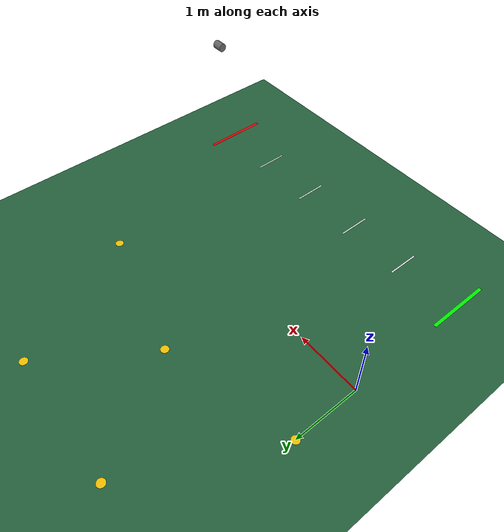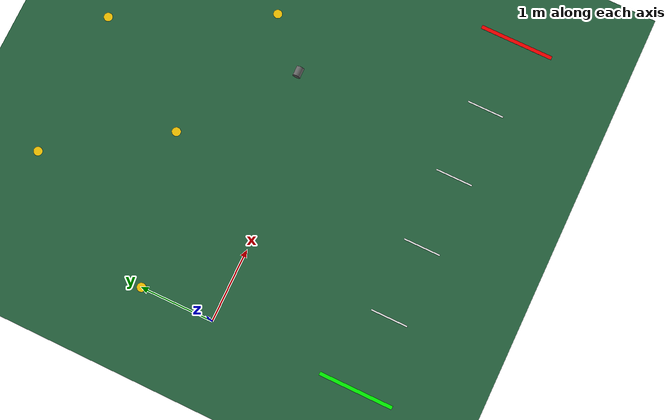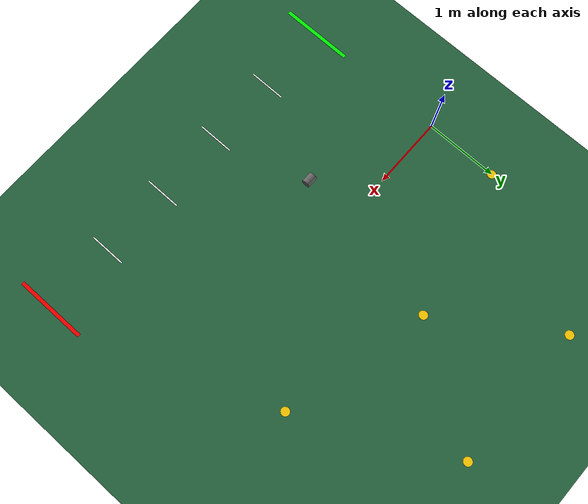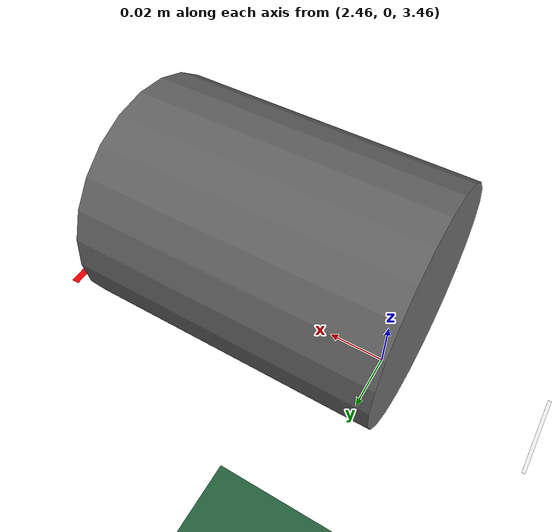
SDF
<?xml version="1.0" ?>
<sdf version="1.6">
  <world name="benchmark_arena_world">
    <!-- Sun Light -->
    <include>
      <uri>model://sun</uri>
    </include>

    <!-- Physics Parameters -->
    <physics type="ode">
      <max_step_size>0.001</max_step_size>
      <real_time_factor>1.0</real_time_factor>
      <real_time_update_rate>1000</real_time_update_rate>
      <ode>
        <solver>
          <type>quick</type>
          <iters>50</iters>
          <sor>1.3</sor>
        </solver>
      </ode>
    </physics>

    <!-- Arena Floor -->
    <model name="arena_floor">
      <static>true</static>
      <link name="floor_link">
        <collision name="floor_collision">
          <geometry>
            <plane>
              <normal>0 0 1</normal>
              <size>14.0 10.0</size>
            </plane>
          </geometry>
          <surface>
            <friction>
              <ode>
                <mu>1.0</mu>
                <mu2>1.0</mu2>
              </ode>
            </friction>
          </surface>
        </collision>
        <visual name="floor_visual">
          <geometry>
            <plane>
              <normal>0 0 1</normal>
              <size>14.0 10.0</size>
            </plane>
          </geometry>
          <material>
            <ambient>0.12 0.35 0.20 1.0</ambient>
            <diffuse>0.15 0.40 0.25 1.0</diffuse>
          </material>
        </visual>

        <!-- Scenario 1: 5-Meter Sprint Lane Markings       -->
        <!-- Start Line (x = 0, y = -2) -->
        <visual name="sprint_start_line">
          <pose>0 -2.0 0.001 0 0 0</pose>
          <geometry><box><size>0.05 1.0 0.001</size></box></geometry>
          <material><ambient>0 1 0 1</ambient><diffuse>0 1 0 1</diffuse></material>
        </visual>
        <!-- 1m Marker -->
        <visual name="sprint_1m_line">
          <pose>1.0 -2.0 0.001 0 0 0</pose>
          <geometry><box><size>0.02 0.5 0.001</size></box></geometry>
          <material><ambient>1 1 1 1</ambient></material>
        </visual>
        <!-- 2m Marker -->
        <visual name="sprint_2m_line">
          <pose>2.0 -2.0 0.001 0 0 0</pose>
          <geometry><box><size>0.02 0.5 0.001</size></box></geometry>
          <material><ambient>1 1 1 1</ambient></material>
        </visual>
        <!-- 3m Marker -->
        <visual name="sprint_3m_line">
          <pose>3.0 -2.0 0.001 0 0 0</pose>
          <geometry><box><size>0.02 0.5 0.001</size></box></geometry>
          <material><ambient>1 1 1 1</ambient></material>
        </visual>
        <!-- 4m Marker -->
        <visual name="sprint_4m_line">
          <pose>4.0 -2.0 0.001 0 0 0</pose>
          <geometry><box><size>0.02 0.5 0.001</size></box></geometry>
          <material><ambient>1 1 1 1</ambient></material>
        </visual>
        <!-- 5m Halt Trigger Line -->
        <visual name="sprint_halt_line">
          <pose>5.0 -2.0 0.001 0 0 0</pose>
          <geometry><box><size>0.05 1.0 0.001</size></box></geometry>
          <material><ambient>1 0 0 1</ambient><diffuse>1 0 0 1</diffuse></material>
        </visual>

        <!-- Scenario 2: M-Shape Course Waypoint Markers    -->
        <!-- M Waypoint 1: (0, 1.0) -->
        <visual name="m_wp1">
          <pose>0 1.0 0.002 0 0 0</pose>
          <geometry><cylinder><radius>0.06</radius><length>0.001</length></cylinder></geometry>
          <material><ambient>1 0.8 0 1</ambient></material>
        </visual>
        <!-- M Waypoint 2: (1.0, 3.0) -->
        <visual name="m_wp2">
          <pose>1.0 3.0 0.002 0 0 0</pose>
          <geometry><cylinder><radius>0.06</radius><length>0.001</length></cylinder></geometry>
          <material><ambient>1 0.8 0 1</ambient></material>
        </visual>
        <!-- M Waypoint 3: (2.0, 1.5) -->
        <visual name="m_wp3">
          <pose>2.0 1.5 0.002 0 0 0</pose>
          <geometry><cylinder><radius>0.06</radius><length>0.001</length></cylinder></geometry>
          <material><ambient>1 0.8 0 1</ambient></material>
        </visual>
        <!-- M Waypoint 4: (3.0, 3.0) -->
        <visual name="m_wp4">
          <pose>3.0 3.0 0.002 0 0 0</pose>
          <geometry><cylinder><radius>0.06</radius><length>0.001</length></cylinder></geometry>
          <material><ambient>1 0.8 0 1</ambient></material>
        </visual>
        <!-- M Waypoint 5: (4.0, 1.0) -->
        <visual name="m_wp5">
          <pose>4.0 1.0 0.002 0 0 0</pose>
          <geometry><cylinder><radius>0.06</radius><length>0.001</length></cylinder></geometry>
          <material><ambient>1 0.8 0 1</ambient></material>
        </visual>

      </link>
    </model>

    <!-- Simulated Overhead Rig Marker (Ready for real Gazebo camera plugin) -->
    <model name="overhead_tracking_rig">
      <static>true</static>
      <pose>2.5 0 3.5 0 1.570796 0</pose>
      <link name="mount_link">
        <visual name="mount_vis">
          <geometry><cylinder><radius>0.04</radius><length>0.1</length></cylinder></geometry>
          <material><ambient>0.4 0.4 0.4 1</ambient></material>
        </visual>
      </link>
    </model>

    <!-- Default GUI Camera View (Framing the Benchmark Arena) -->
    <gui fullscreen="0">
      <camera name="user_camera">
        <pose>2.5 -6.0 4.0 0 0.65 1.570796</pose>
        <view_controller>orbit</view_controller>
      </camera>
    </gui>
  </world>
</sdf>
